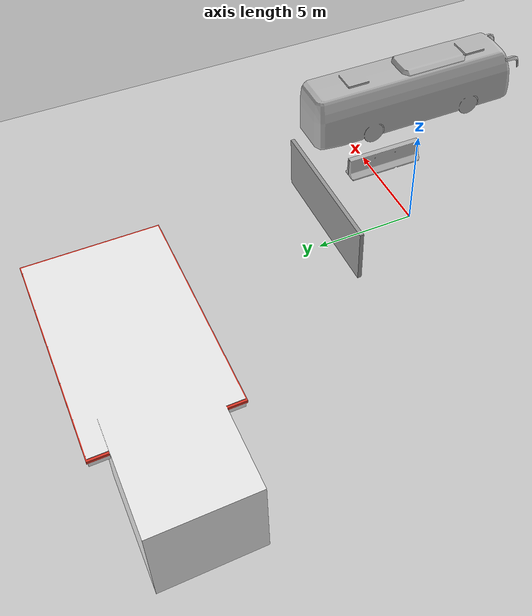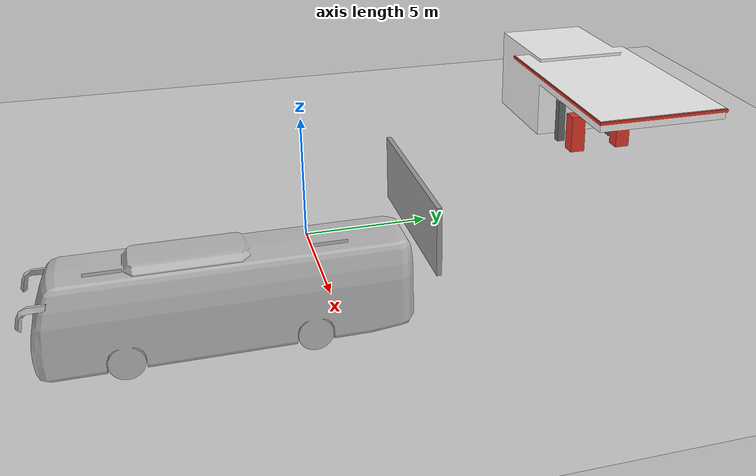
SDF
<sdf version="1.7">
 <world name="default">
  <light name="sun" type="directional">
   <pose>0 0 10 0 -0 0</pose>
   <diffuse>0.8 0.8 0.8 1</diffuse>
   <specular>0.2 0.2 0.2 1</specular>
   <attenuation>
    <range>1000</range>
    <constant>0.9</constant>
    <linear>0.01</linear>
    <quadratic>0.001</quadratic>
   </attenuation>
   <direction>-0.5 0.1 -0.9</direction>
   <spot><inner_angle>0</inner_angle><outer_angle>0</outer_angle><falloff>0</falloff></spot>
  </light>
  <model name="ground_plane">
   <static>1</static>
   <link name="link">
    <collision name="collision">
     <geometry><plane><normal>0 0 1</normal><size>100 100</size></plane></geometry>
     <surface>
      <contact><collide_bitmask>65535</collide_bitmask></contact>
      <friction><ode><mu>100</mu><mu2>50</mu2></ode></friction>
     </surface>
    </collision>
    <visual name="visual">
     <cast_shadows>0</cast_shadows>
     <geometry><plane><normal>0 0 1</normal><size>100 100</size></plane></geometry>
     <material>
      <script><uri>file://media/materials/scripts/gazebo.material</uri><name>Gazebo/Grey</name></script>
     </material>
    </visual>
   </link>
  </model>
  <gravity>0 0 -9.8</gravity>
  <magnetic_field>6e-06 2.3e-05 -4.2e-05</magnetic_field>
  <atmosphere type="adiabatic"/>
  <physics type="ode">
   <max_step_size>0.001</max_step_size>
   <real_time_factor>1</real_time_factor>
   <real_time_update_rate>1000</real_time_update_rate>
  </physics>
  <scene><ambient>0.4 0.4 0.4 1</ambient><background>0.7 0.7 0.7 1</background><shadows>1</shadows></scene>
  <spherical_coordinates>
   <surface_model>EARTH_WGS84</surface_model>
   <latitude_deg>0</latitude_deg>
   <longitude_deg>0</longitude_deg>
   <elevation>0</elevation>
   <heading_deg>0</heading_deg>
  </spherical_coordinates>
  <model name="grey_wall">
   <static>1</static>
   <link name="link">
    <pose>0 0 1.4 0 -0 0</pose>
    <collision name="collision"><geometry><box><size>7.5 0.2 2.8</size></box></geometry></collision>
    <visual name="visual">
     <cast_shadows>0</cast_shadows>
     <geometry><box><size>7.5 0.2 2.8</size></box></geometry>
     <material>
      <script>
       <uri>model://grey_wall/materials/scripts</uri>
       <uri>model://grey_wall/materials/textures</uri>
       <name>vrc/grey_wall</name>
      </script>
     </material>
    </visual>
   </link>
   <pose>1.12255 4.19823 0 0 -0 0</pose>
  </model>
  <model name="bus">
   <static>1</static>
   <link name="link">
    <collision name="collision">
     <geometry><mesh><scale>0.01 0.01 0.01</scale><uri>model://bus/meshes/bus.obj</uri></mesh></geometry>
    </collision>
    <visual name="visual">
     <geometry><mesh><scale>0.01 0.01 0.01</scale><uri>model://bus/meshes/bus.obj</uri></mesh></geometry>
    </visual>
   </link>
   <pose>7.25587 -3.91021 0 0 -0 0</pose>
  </model>
  <model name="jersey_barrier">
   <static>1</static>
   <link name="link">
    <visual name="visual">
     <geometry><mesh><uri>model://jersey_barrier/meshes/jersey_barrier.dae</uri></mesh></geometry>
    </visual>
    <collision name="upright">
     <pose>0 0 0.5715 0 -0 0</pose>
     <geometry><box><size>4.06542 0.3063 1.143</size></box></geometry>
    </collision>
    <collision name="base">
     <pose>0 0 0.032258 0 -0 0</pose>
     <geometry><box><size>4.06542 0.8107 0.064516</size></box></geometry>
    </collision>
    <collision name="base2">
     <pose>0 0 0.1 0 -0 0</pose>
     <geometry><box><size>4.06542 0.65 0.1</size></box></geometry>
    </collision>
    <collision name="base3">
     <pose>0 0 0.2 0 -0 0</pose>
     <geometry><box><size>4.06542 0.5 0.1</size></box></geometry>
    </collision>
    <collision name="left-angle">
     <pose>0 -0.224 0.2401 0.9 -0 0</pose>
     <geometry><box><size>4.06542 0.5 0.064516</size></box></geometry>
    </collision>
    <collision name="right-angle">
     <pose>0 0.224 0.2401 -0.9 0 0</pose>
     <geometry><box><size>4.06542 0.5 0.064516</size></box></geometry>
    </collision>
   </link>
   <pose>3.96691 -0.619514 0 0 -0 1.56727</pose>
  </model>
  <model name="Gas Station">
   <static>1</static>
   <link name="link">
    <collision name="collision">
     <geometry><mesh><uri>model://gas_station/meshes/gas_station.dae</uri></mesh></geometry>
    </collision>
    <visual name="visual">
     <geometry><mesh><uri>model://gas_station/meshes/gas_station.dae</uri></mesh></geometry>
     <material>
      <script>
       <uri>model://gas_station/materials/scripts</uri>
       <uri>model://gas_station/materials/textures</uri>
       <name>GasStation/Diffuse</name>
      </script>
      <shader type="normal_map_tangent_space"><normal_map>GasStation_Normal.png</normal_map></shader>
     </material>
    </visual>
   </link>
   <pose>-6.6503 15.5355 0 0 -0 0</pose>
  </model>
 </world>
</sdf>
